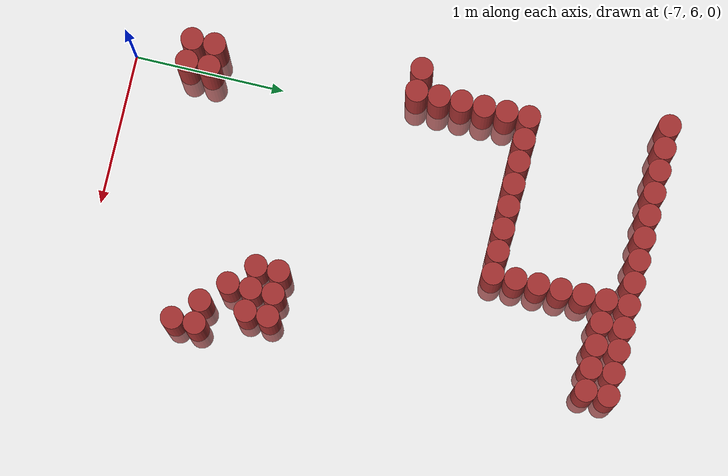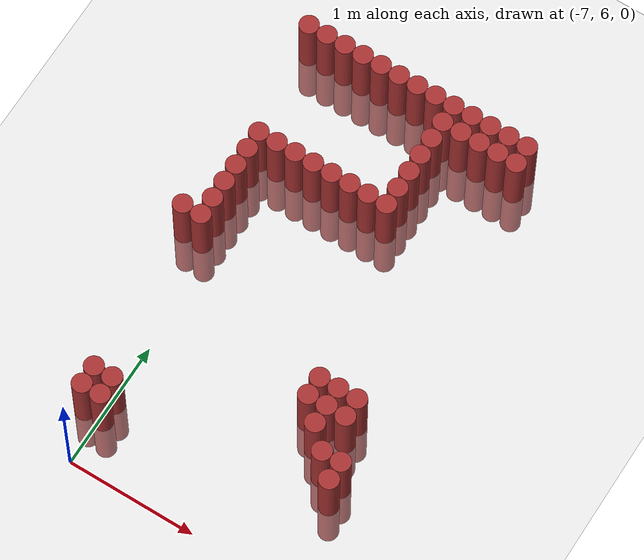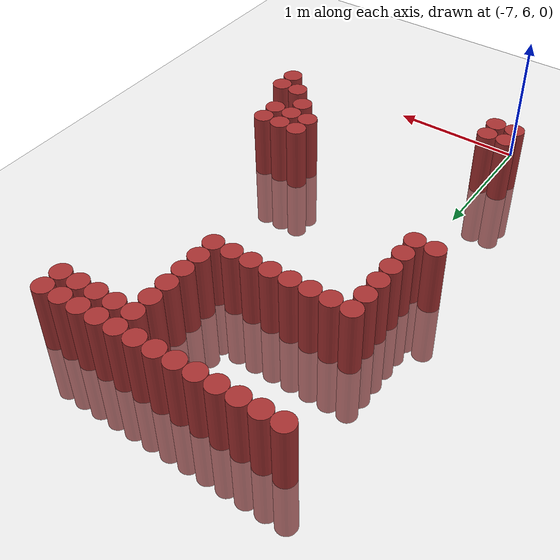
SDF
<sdf version="1.6">
 <world name="default">
  <model name="ground_plane">
   <static>1</static>
   <link name="link">
    <collision name="collision">
     <geometry><plane><normal>0 0 1</normal><size>100 100</size></plane></geometry>
     <surface><friction><ode><mu>100</mu><mu2>50</mu2></ode></friction></surface>
    </collision>
    <visual name="visual">
     <cast_shadows>0</cast_shadows>
     <geometry><plane><normal>0 0 1</normal><size>100 100</size></plane></geometry>
     <material>
      <script><uri>file://media/materials/scripts/gazebo.material</uri><name>Gazebo/Grey</name></script>
     </material>
    </visual>
   </link>
  </model>
  <model name="unit_cylinder_193">
   <static>1</static>
   <pose>-7.275000 7.875000 0.000000 0.000000 0.000000 0.000000</pose>
   <link name="link">
    <inertial>
     <mass>1</mass>
     <inertia><ixx>0.145833</ixx><ixy>0</ixy><ixz>0</ixz><iyy>0.145833</iyy><iyz>0</iyz><izz>0.125</izz></inertia>
    </inertial>
    <collision name="collision">
     <geometry><cylinder><radius>0.075000</radius><length>1</length></cylinder></geometry>
    </collision>
    <visual name="visual">
     <geometry><cylinder><radius>0.075000</radius><length>1</length></cylinder></geometry>
     <material>
      <ambient>0.648000 0.192000 0.192000 1</ambient>
      <diffuse>0.648000 0.192000 0.192000 1</diffuse>
     </material>
     <material>
      <script><name>Gazebo/Grey</name><uri>file://media/materials/scripts/gazebo.material</uri></script>
     </material>
    </visual>
   </link>
  </model>
  <model name="unit_cylinder_194">
   <static>1</static>
   <pose>-7.275000 9.525000 0.000000 0.000000 0.000000 0.000000</pose>
   <link name="link">
    <inertial>
     <mass>1</mass>
     <inertia><ixx>0.145833</ixx><ixy>0</ixy><ixz>0</ixz><iyy>0.145833</iyy><iyz>0</iyz><izz>0.125</izz></inertia>
    </inertial>
    <collision name="collision">
     <geometry><cylinder><radius>0.075000</radius><length>1</length></cylinder></geometry>
    </collision>
    <visual name="visual">
     <geometry><cylinder><radius>0.075000</radius><length>1</length></cylinder></geometry>
     <material>
      <ambient>0.648000 0.192000 0.192000 1</ambient>
      <diffuse>0.648000 0.192000 0.192000 1</diffuse>
     </material>
     <material>
      <script><name>Gazebo/Grey</name><uri>file://media/materials/scripts/gazebo.material</uri></script>
     </material>
    </visual>
   </link>
  </model>
  <model name="unit_cylinder_195">
   <static>1</static>
   <pose>-7.125000 6.375000 0.000000 0.000000 0.000000 0.000000</pose>
   <link name="link">
    <inertial>
     <mass>1</mass>
     <inertia><ixx>0.145833</ixx><ixy>0</ixy><ixz>0</ixz><iyy>0.145833</iyy><iyz>0</iyz><izz>0.125</izz></inertia>
    </inertial>
    <collision name="collision">
     <geometry><cylinder><radius>0.075000</radius><length>1</length></cylinder></geometry>
    </collision>
    <visual name="visual">
     <geometry><cylinder><radius>0.075000</radius><length>1</length></cylinder></geometry>
     <material>
      <ambient>0.648000 0.192000 0.192000 1</ambient>
      <diffuse>0.648000 0.192000 0.192000 1</diffuse>
     </material>
     <material>
      <script><name>Gazebo/Grey</name><uri>file://media/materials/scripts/gazebo.material</uri></script>
     </material>
    </visual>
   </link>
  </model>
  <model name="unit_cylinder_196">
   <static>1</static>
   <pose>-7.125000 6.525000 0.000000 0.000000 0.000000 0.000000</pose>
   <link name="link">
    <inertial>
     <mass>1</mass>
     <inertia><ixx>0.145833</ixx><ixy>0</ixy><ixz>0</ixz><iyy>0.145833</iyy><iyz>0</iyz><izz>0.125</izz></inertia>
    </inertial>
    <collision name="collision">
     <geometry><cylinder><radius>0.075000</radius><length>1</length></cylinder></geometry>
    </collision>
    <visual name="visual">
     <geometry><cylinder><radius>0.075000</radius><length>1</length></cylinder></geometry>
     <material>
      <ambient>0.648000 0.192000 0.192000 1</ambient>
      <diffuse>0.648000 0.192000 0.192000 1</diffuse>
     </material>
     <material>
      <script><name>Gazebo/Grey</name><uri>file://media/materials/scripts/gazebo.material</uri></script>
     </material>
    </visual>
   </link>
  </model>
  <model name="unit_cylinder_197">
   <static>1</static>
   <pose>-7.125000 7.875000 0.000000 0.000000 0.000000 0.000000</pose>
   <link name="link">
    <inertial>
     <mass>1</mass>
     <inertia><ixx>0.145833</ixx><ixy>0</ixy><ixz>0</ixz><iyy>0.145833</iyy><iyz>0</iyz><izz>0.125</izz></inertia>
    </inertial>
    <collision name="collision">
     <geometry><cylinder><radius>0.075000</radius><length>1</length></cylinder></geometry>
    </collision>
    <visual name="visual">
     <geometry><cylinder><radius>0.075000</radius><length>1</length></cylinder></geometry>
     <material>
      <ambient>0.648000 0.192000 0.192000 1</ambient>
      <diffuse>0.648000 0.192000 0.192000 1</diffuse>
     </material>
     <material>
      <script><name>Gazebo/Grey</name><uri>file://media/materials/scripts/gazebo.material</uri></script>
     </material>
    </visual>
   </link>
  </model>
  <model name="unit_cylinder_198">
   <static>1</static>
   <pose>-7.125000 8.025000 0.000000 0.000000 0.000000 0.000000</pose>
   <link name="link">
    <inertial>
     <mass>1</mass>
     <inertia><ixx>0.145833</ixx><ixy>0</ixy><ixz>0</ixz><iyy>0.145833</iyy><iyz>0</iyz><izz>0.125</izz></inertia>
    </inertial>
    <collision name="collision">
     <geometry><cylinder><radius>0.075000</radius><length>1</length></cylinder></geometry>
    </collision>
    <visual name="visual">
     <geometry><cylinder><radius>0.075000</radius><length>1</length></cylinder></geometry>
     <material>
      <ambient>0.648000 0.192000 0.192000 1</ambient>
      <diffuse>0.648000 0.192000 0.192000 1</diffuse>
     </material>
     <material>
      <script><name>Gazebo/Grey</name><uri>file://media/materials/scripts/gazebo.material</uri></script>
     </material>
    </visual>
   </link>
  </model>
  <model name="unit_cylinder_199">
   <static>1</static>
   <pose>-7.125000 8.175000 0.000000 0.000000 0.000000 0.000000</pose>
   <link name="link">
    <inertial>
     <mass>1</mass>
     <inertia><ixx>0.145833</ixx><ixy>0</ixy><ixz>0</ixz><iyy>0.145833</iyy><iyz>0</iyz><izz>0.125</izz></inertia>
    </inertial>
    <collision name="collision">
     <geometry><cylinder><radius>0.075000</radius><length>1</length></cylinder></geometry>
    </collision>
    <visual name="visual">
     <geometry><cylinder><radius>0.075000</radius><length>1</length></cylinder></geometry>
     <material>
      <ambient>0.648000 0.192000 0.192000 1</ambient>
      <diffuse>0.648000 0.192000 0.192000 1</diffuse>
     </material>
     <material>
      <script><name>Gazebo/Grey</name><uri>file://media/materials/scripts/gazebo.material</uri></script>
     </material>
    </visual>
   </link>
  </model>
  <model name="unit_cylinder_200">
   <static>1</static>
   <pose>-7.125000 8.325000 0.000000 0.000000 0.000000 0.000000</pose>
   <link name="link">
    <inertial>
     <mass>1</mass>
     <inertia><ixx>0.145833</ixx><ixy>0</ixy><ixz>0</ixz><iyy>0.145833</iyy><iyz>0</iyz><izz>0.125</izz></inertia>
    </inertial>
    <collision name="collision">
     <geometry><cylinder><radius>0.075000</radius><length>1</length></cylinder></geometry>
    </collision>
    <visual name="visual">
     <geometry><cylinder><radius>0.075000</radius><length>1</length></cylinder></geometry>
     <material>
      <ambient>0.648000 0.192000 0.192000 1</ambient>
      <diffuse>0.648000 0.192000 0.192000 1</diffuse>
     </material>
     <material>
      <script><name>Gazebo/Grey</name><uri>file://media/materials/scripts/gazebo.material</uri></script>
     </material>
    </visual>
   </link>
  </model>
  <model name="unit_cylinder_201">
   <static>1</static>
   <pose>-7.125000 8.475000 0.000000 0.000000 0.000000 0.000000</pose>
   <link name="link">
    <inertial>
     <mass>1</mass>
     <inertia><ixx>0.145833</ixx><ixy>0</ixy><ixz>0</ixz><iyy>0.145833</iyy><iyz>0</iyz><izz>0.125</izz></inertia>
    </inertial>
    <collision name="collision">
     <geometry><cylinder><radius>0.075000</radius><length>1</length></cylinder></geometry>
    </collision>
    <visual name="visual">
     <geometry><cylinder><radius>0.075000</radius><length>1</length></cylinder></geometry>
     <material>
      <ambient>0.648000 0.192000 0.192000 1</ambient>
      <diffuse>0.648000 0.192000 0.192000 1</diffuse>
     </material>
     <material>
      <script><name>Gazebo/Grey</name><uri>file://media/materials/scripts/gazebo.material</uri></script>
     </material>
    </visual>
   </link>
  </model>
  <model name="unit_cylinder_202">
   <static>1</static>
   <pose>-7.125000 8.625000 0.000000 0.000000 0.000000 0.000000</pose>
   <link name="link">
    <inertial>
     <mass>1</mass>
     <inertia><ixx>0.145833</ixx><ixy>0</ixy><ixz>0</ixz><iyy>0.145833</iyy><iyz>0</iyz><izz>0.125</izz></inertia>
    </inertial>
    <collision name="collision">
     <geometry><cylinder><radius>0.075000</radius><length>1</length></cylinder></geometry>
    </collision>
    <visual name="visual">
     <geometry><cylinder><radius>0.075000</radius><length>1</length></cylinder></geometry>
     <material>
      <ambient>0.648000 0.192000 0.192000 1</ambient>
      <diffuse>0.648000 0.192000 0.192000 1</diffuse>
     </material>
     <material>
      <script><name>Gazebo/Grey</name><uri>file://media/materials/scripts/gazebo.material</uri></script>
     </material>
    </visual>
   </link>
  </model>
  <model name="unit_cylinder_203">
   <static>1</static>
   <pose>-7.125000 9.525000 0.000000 0.000000 0.000000 0.000000</pose>
   <link name="link">
    <inertial>
     <mass>1</mass>
     <inertia><ixx>0.145833</ixx><ixy>0</ixy><ixz>0</ixz><iyy>0.145833</iyy><iyz>0</iyz><izz>0.125</izz></inertia>
    </inertial>
    <collision name="collision">
     <geometry><cylinder><radius>0.075000</radius><length>1</length></cylinder></geometry>
    </collision>
    <visual name="visual">
     <geometry><cylinder><radius>0.075000</radius><length>1</length></cylinder></geometry>
     <material>
      <ambient>0.648000 0.192000 0.192000 1</ambient>
      <diffuse>0.648000 0.192000 0.192000 1</diffuse>
     </material>
     <material>
      <script><name>Gazebo/Grey</name><uri>file://media/materials/scripts/gazebo.material</uri></script>
     </material>
    </visual>
   </link>
  </model>
  <model name="unit_cylinder_204">
   <static>1</static>
   <pose>-6.975000 6.375000 0.000000 0.000000 0.000000 0.000000</pose>
   <link name="link">
    <inertial>
     <mass>1</mass>
     <inertia><ixx>0.145833</ixx><ixy>0</ixy><ixz>0</ixz><iyy>0.145833</iyy><iyz>0</iyz><izz>0.125</izz></inertia>
    </inertial>
    <collision name="collision">
     <geometry><cylinder><radius>0.075000</radius><length>1</length></cylinder></geometry>
    </collision>
    <visual name="visual">
     <geometry><cylinder><radius>0.075000</radius><length>1</length></cylinder></geometry>
     <material>
      <ambient>0.648000 0.192000 0.192000 1</ambient>
      <diffuse>0.648000 0.192000 0.192000 1</diffuse>
     </material>
     <material>
      <script><name>Gazebo/Grey</name><uri>file://media/materials/scripts/gazebo.material</uri></script>
     </material>
    </visual>
   </link>
  </model>
  <model name="unit_cylinder_205">
   <static>1</static>
   <pose>-6.975000 6.525000 0.000000 0.000000 0.000000 0.000000</pose>
   <link name="link">
    <inertial>
     <mass>1</mass>
     <inertia><ixx>0.145833</ixx><ixy>0</ixy><ixz>0</ixz><iyy>0.145833</iyy><iyz>0</iyz><izz>0.125</izz></inertia>
    </inertial>
    <collision name="collision">
     <geometry><cylinder><radius>0.075000</radius><length>1</length></cylinder></geometry>
    </collision>
    <visual name="visual">
     <geometry><cylinder><radius>0.075000</radius><length>1</length></cylinder></geometry>
     <material>
      <ambient>0.648000 0.192000 0.192000 1</ambient>
      <diffuse>0.648000 0.192000 0.192000 1</diffuse>
     </material>
     <material>
      <script><name>Gazebo/Grey</name><uri>file://media/materials/scripts/gazebo.material</uri></script>
     </material>
    </visual>
   </link>
  </model>
  <model name="unit_cylinder_206">
   <static>1</static>
   <pose>-6.975000 8.625000 0.000000 0.000000 0.000000 0.000000</pose>
   <link name="link">
    <inertial>
     <mass>1</mass>
     <inertia><ixx>0.145833</ixx><ixy>0</ixy><ixz>0</ixz><iyy>0.145833</iyy><iyz>0</iyz><izz>0.125</izz></inertia>
    </inertial>
    <collision name="collision">
     <geometry><cylinder><radius>0.075000</radius><length>1</length></cylinder></geometry>
    </collision>
    <visual name="visual">
     <geometry><cylinder><radius>0.075000</radius><length>1</length></cylinder></geometry>
     <material>
      <ambient>0.648000 0.192000 0.192000 1</ambient>
      <diffuse>0.648000 0.192000 0.192000 1</diffuse>
     </material>
     <material>
      <script><name>Gazebo/Grey</name><uri>file://media/materials/scripts/gazebo.material</uri></script>
     </material>
    </visual>
   </link>
  </model>
  <model name="unit_cylinder_207">
   <static>1</static>
   <pose>-6.975000 9.525000 0.000000 0.000000 0.000000 0.000000</pose>
   <link name="link">
    <inertial>
     <mass>1</mass>
     <inertia><ixx>0.145833</ixx><ixy>0</ixy><ixz>0</ixz><iyy>0.145833</iyy><iyz>0</iyz><izz>0.125</izz></inertia>
    </inertial>
    <collision name="collision">
     <geometry><cylinder><radius>0.075000</radius><length>1</length></cylinder></geometry>
    </collision>
    <visual name="visual">
     <geometry><cylinder><radius>0.075000</radius><length>1</length></cylinder></geometry>
     <material>
      <ambient>0.648000 0.192000 0.192000 1</ambient>
      <diffuse>0.648000 0.192000 0.192000 1</diffuse>
     </material>
     <material>
      <script><name>Gazebo/Grey</name><uri>file://media/materials/scripts/gazebo.material</uri></script>
     </material>
    </visual>
   </link>
  </model>
  <model name="unit_cylinder_208">
   <static>1</static>
   <pose>-6.825000 8.625000 0.000000 0.000000 0.000000 0.000000</pose>
   <link name="link">
    <inertial>
     <mass>1</mass>
     <inertia><ixx>0.145833</ixx><ixy>0</ixy><ixz>0</ixz><iyy>0.145833</iyy><iyz>0</iyz><izz>0.125</izz></inertia>
    </inertial>
    <collision name="collision">
     <geometry><cylinder><radius>0.075000</radius><length>1</length></cylinder></geometry>
    </collision>
    <visual name="visual">
     <geometry><cylinder><radius>0.075000</radius><length>1</length></cylinder></geometry>
     <material>
      <ambient>0.648000 0.192000 0.192000 1</ambient>
      <diffuse>0.648000 0.192000 0.192000 1</diffuse>
     </material>
     <material>
      <script><name>Gazebo/Grey</name><uri>file://media/materials/scripts/gazebo.material</uri></script>
     </material>
    </visual>
   </link>
  </model>
  <model name="unit_cylinder_209">
   <static>1</static>
   <pose>-6.825000 9.525000 0.000000 0.000000 0.000000 0.000000</pose>
   <link name="link">
    <inertial>
     <mass>1</mass>
     <inertia><ixx>0.145833</ixx><ixy>0</ixy><ixz>0</ixz><iyy>0.145833</iyy><iyz>0</iyz><izz>0.125</izz></inertia>
    </inertial>
    <collision name="collision">
     <geometry><cylinder><radius>0.075000</radius><length>1</length></cylinder></geometry>
    </collision>
    <visual name="visual">
     <geometry><cylinder><radius>0.075000</radius><length>1</length></cylinder></geometry>
     <material>
      <ambient>0.648000 0.192000 0.192000 1</ambient>
      <diffuse>0.648000 0.192000 0.192000 1</diffuse>
     </material>
     <material>
      <script><name>Gazebo/Grey</name><uri>file://media/materials/scripts/gazebo.material</uri></script>
     </material>
    </visual>
   </link>
  </model>
  <model name="unit_cylinder_210">
   <static>1</static>
   <pose>-6.675000 8.625000 0.000000 0.000000 0.000000 0.000000</pose>
   <link name="link">
    <inertial>
     <mass>1</mass>
     <inertia><ixx>0.145833</ixx><ixy>0</ixy><ixz>0</ixz><iyy>0.145833</iyy><iyz>0</iyz><izz>0.125</izz></inertia>
    </inertial>
    <collision name="collision">
     <geometry><cylinder><radius>0.075000</radius><length>1</length></cylinder></geometry>
    </collision>
    <visual name="visual">
     <geometry><cylinder><radius>0.075000</radius><length>1</length></cylinder></geometry>
     <material>
      <ambient>0.648000 0.192000 0.192000 1</ambient>
      <diffuse>0.648000 0.192000 0.192000 1</diffuse>
     </material>
     <material>
      <script><name>Gazebo/Grey</name><uri>file://media/materials/scripts/gazebo.material</uri></script>
     </material>
    </visual>
   </link>
  </model>
  <model name="unit_cylinder_211">
   <static>1</static>
   <pose>-6.675000 9.525000 0.000000 0.000000 0.000000 0.000000</pose>
   <link name="link">
    <inertial>
     <mass>1</mass>
     <inertia><ixx>0.145833</ixx><ixy>0</ixy><ixz>0</ixz><iyy>0.145833</iyy><iyz>0</iyz><izz>0.125</izz></inertia>
    </inertial>
    <collision name="collision">
     <geometry><cylinder><radius>0.075000</radius><length>1</length></cylinder></geometry>
    </collision>
    <visual name="visual">
     <geometry><cylinder><radius>0.075000</radius><length>1</length></cylinder></geometry>
     <material>
      <ambient>0.648000 0.192000 0.192000 1</ambient>
      <diffuse>0.648000 0.192000 0.192000 1</diffuse>
     </material>
     <material>
      <script><name>Gazebo/Grey</name><uri>file://media/materials/scripts/gazebo.material</uri></script>
     </material>
    </visual>
   </link>
  </model>
  <model name="unit_cylinder_213">
   <static>1</static>
   <pose>-6.525000 8.625000 0.000000 0.000000 0.000000 0.000000</pose>
   <link name="link">
    <inertial>
     <mass>1</mass>
     <inertia><ixx>0.145833</ixx><ixy>0</ixy><ixz>0</ixz><iyy>0.145833</iyy><iyz>0</iyz><izz>0.125</izz></inertia>
    </inertial>
    <collision name="collision">
     <geometry><cylinder><radius>0.075000</radius><length>1</length></cylinder></geometry>
    </collision>
    <visual name="visual">
     <geometry><cylinder><radius>0.075000</radius><length>1</length></cylinder></geometry>
     <material>
      <ambient>0.648000 0.192000 0.192000 1</ambient>
      <diffuse>0.648000 0.192000 0.192000 1</diffuse>
     </material>
     <material>
      <script><name>Gazebo/Grey</name><uri>file://media/materials/scripts/gazebo.material</uri></script>
     </material>
    </visual>
   </link>
  </model>
  <model name="unit_cylinder_214">
   <static>1</static>
   <pose>-6.525000 9.525000 0.000000 0.000000 0.000000 0.000000</pose>
   <link name="link">
    <inertial>
     <mass>1</mass>
     <inertia><ixx>0.145833</ixx><ixy>0</ixy><ixz>0</ixz><iyy>0.145833</iyy><iyz>0</iyz><izz>0.125</izz></inertia>
    </inertial>
    <collision name="collision">
     <geometry><cylinder><radius>0.075000</radius><length>1</length></cylinder></geometry>
    </collision>
    <visual name="visual">
     <geometry><cylinder><radius>0.075000</radius><length>1</length></cylinder></geometry>
     <material>
      <ambient>0.648000 0.192000 0.192000 1</ambient>
      <diffuse>0.648000 0.192000 0.192000 1</diffuse>
     </material>
     <material>
      <script><name>Gazebo/Grey</name><uri>file://media/materials/scripts/gazebo.material</uri></script>
     </material>
    </visual>
   </link>
  </model>
  <model name="unit_cylinder_218">
   <static>1</static>
   <pose>-6.375000 8.625000 0.000000 0.000000 0.000000 0.000000</pose>
   <link name="link">
    <inertial>
     <mass>1</mass>
     <inertia><ixx>0.145833</ixx><ixy>0</ixy><ixz>0</ixz><iyy>0.145833</iyy><iyz>0</iyz><izz>0.125</izz></inertia>
    </inertial>
    <collision name="collision">
     <geometry><cylinder><radius>0.075000</radius><length>1</length></cylinder></geometry>
    </collision>
    <visual name="visual">
     <geometry><cylinder><radius>0.075000</radius><length>1</length></cylinder></geometry>
     <material>
      <ambient>0.648000 0.192000 0.192000 1</ambient>
      <diffuse>0.648000 0.192000 0.192000 1</diffuse>
     </material>
     <material>
      <script><name>Gazebo/Grey</name><uri>file://media/materials/scripts/gazebo.material</uri></script>
     </material>
    </visual>
   </link>
  </model>
  <model name="unit_cylinder_219">
   <static>1</static>
   <pose>-6.375000 9.525000 0.000000 0.000000 0.000000 0.000000</pose>
   <link name="link">
    <inertial>
     <mass>1</mass>
     <inertia><ixx>0.145833</ixx><ixy>0</ixy><ixz>0</ixz><iyy>0.145833</iyy><iyz>0</iyz><izz>0.125</izz></inertia>
    </inertial>
    <collision name="collision">
     <geometry><cylinder><radius>0.075000</radius><length>1</length></cylinder></geometry>
    </collision>
    <visual name="visual">
     <geometry><cylinder><radius>0.075000</radius><length>1</length></cylinder></geometry>
     <material>
      <ambient>0.648000 0.192000 0.192000 1</ambient>
      <diffuse>0.648000 0.192000 0.192000 1</diffuse>
     </material>
     <material>
      <script><name>Gazebo/Grey</name><uri>file://media/materials/scripts/gazebo.material</uri></script>
     </material>
    </visual>
   </link>
  </model>
  <model name="unit_cylinder_222">
   <static>1</static>
   <pose>-6.225000 8.625000 0.000000 0.000000 0.000000 0.000000</pose>
   <link name="link">
    <inertial>
     <mass>1</mass>
     <inertia><ixx>0.145833</ixx><ixy>0</ixy><ixz>0</ixz><iyy>0.145833</iyy><iyz>0</iyz><izz>0.125</izz></inertia>
    </inertial>
    <collision name="collision">
     <geometry><cylinder><radius>0.075000</radius><length>1</length></cylinder></geometry>
    </collision>
    <visual name="visual">
     <geometry><cylinder><radius>0.075000</radius><length>1</length></cylinder></geometry>
     <material>
      <ambient>0.648000 0.192000 0.192000 1</ambient>
      <diffuse>0.648000 0.192000 0.192000 1</diffuse>
     </material>
     <material>
      <script><name>Gazebo/Grey</name><uri>file://media/materials/scripts/gazebo.material</uri></script>
     </material>
    </visual>
   </link>
  </model>
  <model name="unit_cylinder_223">
   <static>1</static>
   <pose>-6.225000 9.525000 0.000000 0.000000 0.000000 0.000000</pose>
   <link name="link">
    <inertial>
     <mass>1</mass>
     <inertia><ixx>0.145833</ixx><ixy>0</ixy><ixz>0</ixz><iyy>0.145833</iyy><iyz>0</iyz><izz>0.125</izz></inertia>
    </inertial>
    <collision name="collision">
     <geometry><cylinder><radius>0.075000</radius><length>1</length></cylinder></geometry>
    </collision>
    <visual name="visual">
     <geometry><cylinder><radius>0.075000</radius><length>1</length></cylinder></geometry>
     <material>
      <ambient>0.648000 0.192000 0.192000 1</ambient>
      <diffuse>0.648000 0.192000 0.192000 1</diffuse>
     </material>
     <material>
      <script><name>Gazebo/Grey</name><uri>file://media/materials/scripts/gazebo.material</uri></script>
     </material>
    </visual>
   </link>
  </model>
  <model name="unit_cylinder_224">
   <static>1</static>
   <pose>-6.075000 8.625000 0.000000 0.000000 0.000000 0.000000</pose>
   <link name="link">
    <inertial>
     <mass>1</mass>
     <inertia><ixx>0.145833</ixx><ixy>0</ixy><ixz>0</ixz><iyy>0.145833</iyy><iyz>0</iyz><izz>0.125</izz></inertia>
    </inertial>
    <collision name="collision">
     <geometry><cylinder><radius>0.075000</radius><length>1</length></cylinder></geometry>
    </collision>
    <visual name="visual">
     <geometry><cylinder><radius>0.075000</radius><length>1</length></cylinder></geometry>
     <material>
      <ambient>0.648000 0.192000 0.192000 1</ambient>
      <diffuse>0.648000 0.192000 0.192000 1</diffuse>
     </material>
     <material>
      <script><name>Gazebo/Grey</name><uri>file://media/materials/scripts/gazebo.material</uri></script>
     </material>
    </visual>
   </link>
  </model>
  <model name="unit_cylinder_225">
   <static>1</static>
   <pose>-6.075000 8.775000 0.000000 0.000000 0.000000 0.000000</pose>
   <link name="link">
    <inertial>
     <mass>1</mass>
     <inertia><ixx>0.145833</ixx><ixy>0</ixy><ixz>0</ixz><iyy>0.145833</iyy><iyz>0</iyz><izz>0.125</izz></inertia>
    </inertial>
    <collision name="collision">
     <geometry><cylinder><radius>0.075000</radius><length>1</length></cylinder></geometry>
    </collision>
    <visual name="visual">
     <geometry><cylinder><radius>0.075000</radius><length>1</length></cylinder></geometry>
     <material>
      <ambient>0.648000 0.192000 0.192000 1</ambient>
      <diffuse>0.648000 0.192000 0.192000 1</diffuse>
     </material>
     <material>
      <script><name>Gazebo/Grey</name><uri>file://media/materials/scripts/gazebo.material</uri></script>
     </material>
    </visual>
   </link>
  </model>
  <model name="unit_cylinder_226">
   <static>1</static>
   <pose>-6.075000 8.925000 0.000000 0.000000 0.000000 0.000000</pose>
   <link name="link">
    <inertial>
     <mass>1</mass>
     <inertia><ixx>0.145833</ixx><ixy>0</ixy><ixz>0</ixz><iyy>0.145833</iyy><iyz>0</iyz><izz>0.125</izz></inertia>
    </inertial>
    <collision name="collision">
     <geometry><cylinder><radius>0.075000</radius><length>1</length></cylinder></geometry>
    </collision>
    <visual name="visual">
     <geometry><cylinder><radius>0.075000</radius><length>1</length></cylinder></geometry>
     <material>
      <ambient>0.648000 0.192000 0.192000 1</ambient>
      <diffuse>0.648000 0.192000 0.192000 1</diffuse>
     </material>
     <material>
      <script><name>Gazebo/Grey</name><uri>file://media/materials/scripts/gazebo.material</uri></script>
     </material>
    </visual>
   </link>
  </model>
  <model name="unit_cylinder_227">
   <static>1</static>
   <pose>-6.075000 9.075000 0.000000 0.000000 0.000000 0.000000</pose>
   <link name="link">
    <inertial>
     <mass>1</mass>
     <inertia><ixx>0.145833</ixx><ixy>0</ixy><ixz>0</ixz><iyy>0.145833</iyy><iyz>0</iyz><izz>0.125</izz></inertia>
    </inertial>
    <collision name="collision">
     <geometry><cylinder><radius>0.075000</radius><length>1</length></cylinder></geometry>
    </collision>
    <visual name="visual">
     <geometry><cylinder><radius>0.075000</radius><length>1</length></cylinder></geometry>
     <material>
      <ambient>0.648000 0.192000 0.192000 1</ambient>
      <diffuse>0.648000 0.192000 0.192000 1</diffuse>
     </material>
     <material>
      <script><name>Gazebo/Grey</name><uri>file://media/materials/scripts/gazebo.material</uri></script>
     </material>
    </visual>
   </link>
  </model>
  <model name="unit_cylinder_228">
   <static>1</static>
   <pose>-6.075000 9.225000 0.000000 0.000000 0.000000 0.000000</pose>
   <link name="link">
    <inertial>
     <mass>1</mass>
     <inertia><ixx>0.145833</ixx><ixy>0</ixy><ixz>0</ixz><iyy>0.145833</iyy><iyz>0</iyz><izz>0.125</izz></inertia>
    </inertial>
    <collision name="collision">
     <geometry><cylinder><radius>0.075000</radius><length>1</length></cylinder></geometry>
    </collision>
    <visual name="visual">
     <geometry><cylinder><radius>0.075000</radius><length>1</length></cylinder></geometry>
     <material>
      <ambient>0.648000 0.192000 0.192000 1</ambient>
      <diffuse>0.648000 0.192000 0.192000 1</diffuse>
     </material>
     <material>
      <script><name>Gazebo/Grey</name><uri>file://media/materials/scripts/gazebo.material</uri></script>
     </material>
    </visual>
   </link>
  </model>
  <model name="unit_cylinder_229">
   <static>1</static>
   <pose>-6.075000 9.375000 0.000000 0.000000 0.000000 0.000000</pose>
   <link name="link">
    <inertial>
     <mass>1</mass>
     <inertia><ixx>0.145833</ixx><ixy>0</ixy><ixz>0</ixz><iyy>0.145833</iyy><iyz>0</iyz><izz>0.125</izz></inertia>
    </inertial>
    <collision name="collision">
     <geometry><cylinder><radius>0.075000</radius><length>1</length></cylinder></geometry>
    </collision>
    <visual name="visual">
     <geometry><cylinder><radius>0.075000</radius><length>1</length></cylinder></geometry>
     <material>
      <ambient>0.648000 0.192000 0.192000 1</ambient>
      <diffuse>0.648000 0.192000 0.192000 1</diffuse>
     </material>
     <material>
      <script><name>Gazebo/Grey</name><uri>file://media/materials/scripts/gazebo.material</uri></script>
     </material>
    </visual>
   </link>
  </model>
  <model name="unit_cylinder_230">
   <static>1</static>
   <pose>-6.075000 9.525000 0.000000 0.000000 0.000000 0.000000</pose>
   <link name="link">
    <inertial>
     <mass>1</mass>
     <inertia><ixx>0.145833</ixx><ixy>0</ixy><ixz>0</ixz><iyy>0.145833</iyy><iyz>0</iyz><izz>0.125</izz></inertia>
    </inertial>
    <collision name="collision">
     <geometry><cylinder><radius>0.075000</radius><length>1</length></cylinder></geometry>
    </collision>
    <visual name="visual">
     <geometry><cylinder><radius>0.075000</radius><length>1</length></cylinder></geometry>
     <material>
      <ambient>0.648000 0.192000 0.192000 1</ambient>
      <diffuse>0.648000 0.192000 0.192000 1</diffuse>
     </material>
     <material>
      <script><name>Gazebo/Grey</name><uri>file://media/materials/scripts/gazebo.material</uri></script>
     </material>
    </visual>
   </link>
  </model>
  <model name="unit_cylinder_231">
   <static>1</static>
   <pose>-5.925000 9.375000 0.000000 0.000000 0.000000 0.000000</pose>
   <link name="link">
    <inertial>
     <mass>1</mass>
     <inertia><ixx>0.145833</ixx><ixy>0</ixy><ixz>0</ixz><iyy>0.145833</iyy><iyz>0</iyz><izz>0.125</izz></inertia>
    </inertial>
    <collision name="collision">
     <geometry><cylinder><radius>0.075000</radius><length>1</length></cylinder></geometry>
    </collision>
    <visual name="visual">
     <geometry><cylinder><radius>0.075000</radius><length>1</length></cylinder></geometry>
     <material>
      <ambient>0.648000 0.192000 0.192000 1</ambient>
      <diffuse>0.648000 0.192000 0.192000 1</diffuse>
     </material>
     <material>
      <script><name>Gazebo/Grey</name><uri>file://media/materials/scripts/gazebo.material</uri></script>
     </material>
    </visual>
   </link>
  </model>
  <model name="unit_cylinder_232">
   <static>1</static>
   <pose>-5.925000 9.525000 0.000000 0.000000 0.000000 0.000000</pose>
   <link name="link">
    <inertial>
     <mass>1</mass>
     <inertia><ixx>0.145833</ixx><ixy>0</ixy><ixz>0</ixz><iyy>0.145833</iyy><iyz>0</iyz><izz>0.125</izz></inertia>
    </inertial>
    <collision name="collision">
     <geometry><cylinder><radius>0.075000</radius><length>1</length></cylinder></geometry>
    </collision>
    <visual name="visual">
     <geometry><cylinder><radius>0.075000</radius><length>1</length></cylinder></geometry>
     <material>
      <ambient>0.648000 0.192000 0.192000 1</ambient>
      <diffuse>0.648000 0.192000 0.192000 1</diffuse>
     </material>
     <material>
      <script><name>Gazebo/Grey</name><uri>file://media/materials/scripts/gazebo.material</uri></script>
     </material>
    </visual>
   </link>
  </model>
  <model name="unit_cylinder_233">
   <static>1</static>
   <pose>-5.775000 7.125000 0.000000 0.000000 0.000000 0.000000</pose>
   <link name="link">
    <inertial>
     <mass>1</mass>
     <inertia><ixx>0.145833</ixx><ixy>0</ixy><ixz>0</ixz><iyy>0.145833</iyy><iyz>0</iyz><izz>0.125</izz></inertia>
    </inertial>
    <collision name="collision">
     <geometry><cylinder><radius>0.075000</radius><length>1</length></cylinder></geometry>
    </collision>
    <visual name="visual">
     <geometry><cylinder><radius>0.075000</radius><length>1</length></cylinder></geometry>
     <material>
      <ambient>0.648000 0.192000 0.192000 1</ambient>
      <diffuse>0.648000 0.192000 0.192000 1</diffuse>
     </material>
     <material>
      <script><name>Gazebo/Grey</name><uri>file://media/materials/scripts/gazebo.material</uri></script>
     </material>
    </visual>
   </link>
  </model>
  <model name="unit_cylinder_234">
   <static>1</static>
   <pose>-5.775000 7.275000 0.000000 0.000000 0.000000 0.000000</pose>
   <link name="link">
    <inertial>
     <mass>1</mass>
     <inertia><ixx>0.145833</ixx><ixy>0</ixy><ixz>0</ixz><iyy>0.145833</iyy><iyz>0</iyz><izz>0.125</izz></inertia>
    </inertial>
    <collision name="collision">
     <geometry><cylinder><radius>0.075000</radius><length>1</length></cylinder></geometry>
    </collision>
    <visual name="visual">
     <geometry><cylinder><radius>0.075000</radius><length>1</length></cylinder></geometry>
     <material>
      <ambient>0.648000 0.192000 0.192000 1</ambient>
      <diffuse>0.648000 0.192000 0.192000 1</diffuse>
     </material>
     <material>
      <script><name>Gazebo/Grey</name><uri>file://media/materials/scripts/gazebo.material</uri></script>
     </material>
    </visual>
   </link>
  </model>
  <model name="unit_cylinder_235">
   <static>1</static>
   <pose>-5.775000 9.375000 0.000000 0.000000 0.000000 0.000000</pose>
   <link name="link">
    <inertial>
     <mass>1</mass>
     <inertia><ixx>0.145833</ixx><ixy>0</ixy><ixz>0</ixz><iyy>0.145833</iyy><iyz>0</iyz><izz>0.125</izz></inertia>
    </inertial>
    <collision name="collision">
     <geometry><cylinder><radius>0.075000</radius><length>1</length></cylinder></geometry>
    </collision>
    <visual name="visual">
     <geometry><cylinder><radius>0.075000</radius><length>1</length></cylinder></geometry>
     <material>
      <ambient>0.648000 0.192000 0.192000 1</ambient>
      <diffuse>0.648000 0.192000 0.192000 1</diffuse>
     </material>
     <material>
      <script><name>Gazebo/Grey</name><uri>file://media/materials/scripts/gazebo.material</uri></script>
     </material>
    </visual>
   </link>
  </model>
  <model name="unit_cylinder_236">
   <static>1</static>
   <pose>-5.775000 9.525000 0.000000 0.000000 0.000000 0.000000</pose>
   <link name="link">
    <inertial>
     <mass>1</mass>
     <inertia><ixx>0.145833</ixx><ixy>0</ixy><ixz>0</ixz><iyy>0.145833</iyy><iyz>0</iyz><izz>0.125</izz></inertia>
    </inertial>
    <collision name="collision">
     <geometry><cylinder><radius>0.075000</radius><length>1</length></cylinder></geometry>
    </collision>
    <visual name="visual">
     <geometry><cylinder><radius>0.075000</radius><length>1</length></cylinder></geometry>
     <material>
      <ambient>0.648000 0.192000 0.192000 1</ambient>
      <diffuse>0.648000 0.192000 0.192000 1</diffuse>
     </material>
     <material>
      <script><name>Gazebo/Grey</name><uri>file://media/materials/scripts/gazebo.material</uri></script>
     </material>
    </visual>
   </link>
  </model>
  <model name="unit_cylinder_237">
   <static>1</static>
   <pose>-5.625000 6.975000 0.000000 0.000000 0.000000 0.000000</pose>
   <link name="link">
    <inertial>
     <mass>1</mass>
     <inertia><ixx>0.145833</ixx><ixy>0</ixy><ixz>0</ixz><iyy>0.145833</iyy><iyz>0</iyz><izz>0.125</izz></inertia>
    </inertial>
    <collision name="collision">
     <geometry><cylinder><radius>0.075000</radius><length>1</length></cylinder></geometry>
    </collision>
    <visual name="visual">
     <geometry><cylinder><radius>0.075000</radius><length>1</length></cylinder></geometry>
     <material>
      <ambient>0.648000 0.192000 0.192000 1</ambient>
      <diffuse>0.648000 0.192000 0.192000 1</diffuse>
     </material>
     <material>
      <script><name>Gazebo/Grey</name><uri>file://media/materials/scripts/gazebo.material</uri></script>
     </material>
    </visual>
   </link>
  </model>
  <model name="unit_cylinder_238">
   <static>1</static>
   <pose>-5.625000 7.125000 0.000000 0.000000 0.000000 0.000000</pose>
   <link name="link">
    <inertial>
     <mass>1</mass>
     <inertia><ixx>0.145833</ixx><ixy>0</ixy><ixz>0</ixz><iyy>0.145833</iyy><iyz>0</iyz><izz>0.125</izz></inertia>
    </inertial>
    <collision name="collision">
     <geometry><cylinder><radius>0.075000</radius><length>1</length></cylinder></geometry>
    </collision>
    <visual name="visual">
     <geometry><cylinder><radius>0.075000</radius><length>1</length></cylinder></geometry>
     <material>
      <ambient>0.648000 0.192000 0.192000 1</ambient>
      <diffuse>0.648000 0.192000 0.192000 1</diffuse>
     </material>
     <material>
      <script><name>Gazebo/Grey</name><uri>file://media/materials/scripts/gazebo.material</uri></script>
     </material>
    </visual>
   </link>
  </model>
  <model name="unit_cylinder_239">
   <static>1</static>
   <pose>-5.625000 7.275000 0.000000 0.000000 0.000000 0.000000</pose>
   <link name="link">
    <inertial>
     <mass>1</mass>
     <inertia><ixx>0.145833</ixx><ixy>0</ixy><ixz>0</ixz><iyy>0.145833</iyy><iyz>0</iyz><izz>0.125</izz></inertia>
    </inertial>
    <collision name="collision">
     <geometry><cylinder><radius>0.075000</radius><length>1</length></cylinder></geometry>
    </collision>
    <visual name="visual">
     <geometry><cylinder><radius>0.075000</radius><length>1</length></cylinder></geometry>
     <material>
      <ambient>0.648000 0.192000 0.192000 1</ambient>
      <diffuse>0.648000 0.192000 0.192000 1</diffuse>
     </material>
     <material>
      <script><name>Gazebo/Grey</name><uri>file://media/materials/scripts/gazebo.material</uri></script>
     </material>
    </visual>
   </link>
  </model>
  <model name="unit_cylinder_240">
   <static>1</static>
   <pose>-5.625000 9.375000 0.000000 0.000000 0.000000 0.000000</pose>
   <link name="link">
    <inertial>
     <mass>1</mass>
     <inertia><ixx>0.145833</ixx><ixy>0</ixy><ixz>0</ixz><iyy>0.145833</iyy><iyz>0</iyz><izz>0.125</izz></inertia>
    </inertial>
    <collision name="collision">
     <geometry><cylinder><radius>0.075000</radius><length>1</length></cylinder></geometry>
    </collision>
    <visual name="visual">
     <geometry><cylinder><radius>0.075000</radius><length>1</length></cylinder></geometry>
     <material>
      <ambient>0.648000 0.192000 0.192000 1</ambient>
      <diffuse>0.648000 0.192000 0.192000 1</diffuse>
     </material>
     <material>
      <script><name>Gazebo/Grey</name><uri>file://media/materials/scripts/gazebo.material</uri></script>
     </material>
    </visual>
   </link>
  </model>
  <model name="unit_cylinder_241">
   <static>1</static>
   <pose>-5.625000 9.525000 0.000000 0.000000 0.000000 0.000000</pose>
   <link name="link">
    <inertial>
     <mass>1</mass>
     <inertia><ixx>0.145833</ixx><ixy>0</ixy><ixz>0</ixz><iyy>0.145833</iyy><iyz>0</iyz><izz>0.125</izz></inertia>
    </inertial>
    <collision name="collision">
     <geometry><cylinder><radius>0.075000</radius><length>1</length></cylinder></geometry>
    </collision>
    <visual name="visual">
     <geometry><cylinder><radius>0.075000</radius><length>1</length></cylinder></geometry>
     <material>
      <ambient>0.648000 0.192000 0.192000 1</ambient>
      <diffuse>0.648000 0.192000 0.192000 1</diffuse>
     </material>
     <material>
      <script><name>Gazebo/Grey</name><uri>file://media/materials/scripts/gazebo.material</uri></script>
     </material>
    </visual>
   </link>
  </model>
  <model name="unit_cylinder_242">
   <static>1</static>
   <pose>-5.475000 6.825000 0.000000 0.000000 0.000000 0.000000</pose>
   <link name="link">
    <inertial>
     <mass>1</mass>
     <inertia><ixx>0.145833</ixx><ixy>0</ixy><ixz>0</ixz><iyy>0.145833</iyy><iyz>0</iyz><izz>0.125</izz></inertia>
    </inertial>
    <collision name="collision">
     <geometry><cylinder><radius>0.075000</radius><length>1</length></cylinder></geometry>
    </collision>
    <visual name="visual">
     <geometry><cylinder><radius>0.075000</radius><length>1</length></cylinder></geometry>
     <material>
      <ambient>0.648000 0.192000 0.192000 1</ambient>
      <diffuse>0.648000 0.192000 0.192000 1</diffuse>
     </material>
     <material>
      <script><name>Gazebo/Grey</name><uri>file://media/materials/scripts/gazebo.material</uri></script>
     </material>
    </visual>
   </link>
  </model>
  <model name="unit_cylinder_243">
   <static>1</static>
   <pose>-5.475000 7.125000 0.000000 0.000000 0.000000 0.000000</pose>
   <link name="link">
    <inertial>
     <mass>1</mass>
     <inertia><ixx>0.145833</ixx><ixy>0</ixy><ixz>0</ixz><iyy>0.145833</iyy><iyz>0</iyz><izz>0.125</izz></inertia>
    </inertial>
    <collision name="collision">
     <geometry><cylinder><radius>0.075000</radius><length>1</length></cylinder></geometry>
    </collision>
    <visual name="visual">
     <geometry><cylinder><radius>0.075000</radius><length>1</length></cylinder></geometry>
     <material>
      <ambient>0.648000 0.192000 0.192000 1</ambient>
      <diffuse>0.648000 0.192000 0.192000 1</diffuse>
     </material>
     <material>
      <script><name>Gazebo/Grey</name><uri>file://media/materials/scripts/gazebo.material</uri></script>
     </material>
    </visual>
   </link>
  </model>
  <model name="unit_cylinder_244">
   <static>1</static>
   <pose>-5.475000 7.275000 0.000000 0.000000 0.000000 0.000000</pose>
   <link name="link">
    <inertial>
     <mass>1</mass>
     <inertia><ixx>0.145833</ixx><ixy>0</ixy><ixz>0</ixz><iyy>0.145833</iyy><iyz>0</iyz><izz>0.125</izz></inertia>
    </inertial>
    <collision name="collision">
     <geometry><cylinder><radius>0.075000</radius><length>1</length></cylinder></geometry>
    </collision>
    <visual name="visual">
     <geometry><cylinder><radius>0.075000</radius><length>1</length></cylinder></geometry>
     <material>
      <ambient>0.648000 0.192000 0.192000 1</ambient>
      <diffuse>0.648000 0.192000 0.192000 1</diffuse>
     </material>
     <material>
      <script><name>Gazebo/Grey</name><uri>file://media/materials/scripts/gazebo.material</uri></script>
     </material>
    </visual>
   </link>
  </model>
  <model name="unit_cylinder_245">
   <static>1</static>
   <pose>-5.475000 9.375000 0.000000 0.000000 0.000000 0.000000</pose>
   <link name="link">
    <inertial>
     <mass>1</mass>
     <inertia><ixx>0.145833</ixx><ixy>0</ixy><ixz>0</ixz><iyy>0.145833</iyy><iyz>0</iyz><izz>0.125</izz></inertia>
    </inertial>
    <collision name="collision">
     <geometry><cylinder><radius>0.075000</radius><length>1</length></cylinder></geometry>
    </collision>
    <visual name="visual">
     <geometry><cylinder><radius>0.075000</radius><length>1</length></cylinder></geometry>
     <material>
      <ambient>0.648000 0.192000 0.192000 1</ambient>
      <diffuse>0.648000 0.192000 0.192000 1</diffuse>
     </material>
     <material>
      <script><name>Gazebo/Grey</name><uri>file://media/materials/scripts/gazebo.material</uri></script>
     </material>
    </visual>
   </link>
  </model>
  <model name="unit_cylinder_246">
   <static>1</static>
   <pose>-5.475000 9.525000 0.000000 0.000000 0.000000 0.000000</pose>
   <link name="link">
    <inertial>
     <mass>1</mass>
     <inertia><ixx>0.145833</ixx><ixy>0</ixy><ixz>0</ixz><iyy>0.145833</iyy><iyz>0</iyz><izz>0.125</izz></inertia>
    </inertial>
    <collision name="collision">
     <geometry><cylinder><radius>0.075000</radius><length>1</length></cylinder></geometry>
    </collision>
    <visual name="visual">
     <geometry><cylinder><radius>0.075000</radius><length>1</length></cylinder></geometry>
     <material>
      <ambient>0.648000 0.192000 0.192000 1</ambient>
      <diffuse>0.648000 0.192000 0.192000 1</diffuse>
     </material>
     <material>
      <script><name>Gazebo/Grey</name><uri>file://media/materials/scripts/gazebo.material</uri></script>
     </material>
    </visual>
   </link>
  </model>
  <model name="unit_cylinder_247">
   <static>1</static>
   <pose>-5.325000 6.675000 0.000000 0.000000 0.000000 0.000000</pose>
   <link name="link">
    <inertial>
     <mass>1</mass>
     <inertia><ixx>0.145833</ixx><ixy>0</ixy><ixz>0</ixz><iyy>0.145833</iyy><iyz>0</iyz><izz>0.125</izz></inertia>
    </inertial>
    <collision name="collision">
     <geometry><cylinder><radius>0.075000</radius><length>1</length></cylinder></geometry>
    </collision>
    <visual name="visual">
     <geometry><cylinder><radius>0.075000</radius><length>1</length></cylinder></geometry>
     <material>
      <ambient>0.648000 0.192000 0.192000 1</ambient>
      <diffuse>0.648000 0.192000 0.192000 1</diffuse>
     </material>
     <material>
      <script><name>Gazebo/Grey</name><uri>file://media/materials/scripts/gazebo.material</uri></script>
     </material>
    </visual>
   </link>
  </model>
  <model name="unit_cylinder_248">
   <static>1</static>
   <pose>-5.325000 6.825000 0.000000 0.000000 0.000000 0.000000</pose>
   <link name="link">
    <inertial>
     <mass>1</mass>
     <inertia><ixx>0.145833</ixx><ixy>0</ixy><ixz>0</ixz><iyy>0.145833</iyy><iyz>0</iyz><izz>0.125</izz></inertia>
    </inertial>
    <collision name="collision">
     <geometry><cylinder><radius>0.075000</radius><length>1</length></cylinder></geometry>
    </collision>
    <visual name="visual">
     <geometry><cylinder><radius>0.075000</radius><length>1</length></cylinder></geometry>
     <material>
      <ambient>0.648000 0.192000 0.192000 1</ambient>
      <diffuse>0.648000 0.192000 0.192000 1</diffuse>
     </material>
     <material>
      <script><name>Gazebo/Grey</name><uri>file://media/materials/scripts/gazebo.material</uri></script>
     </material>
    </visual>
   </link>
  </model>
 </world>
</sdf>
